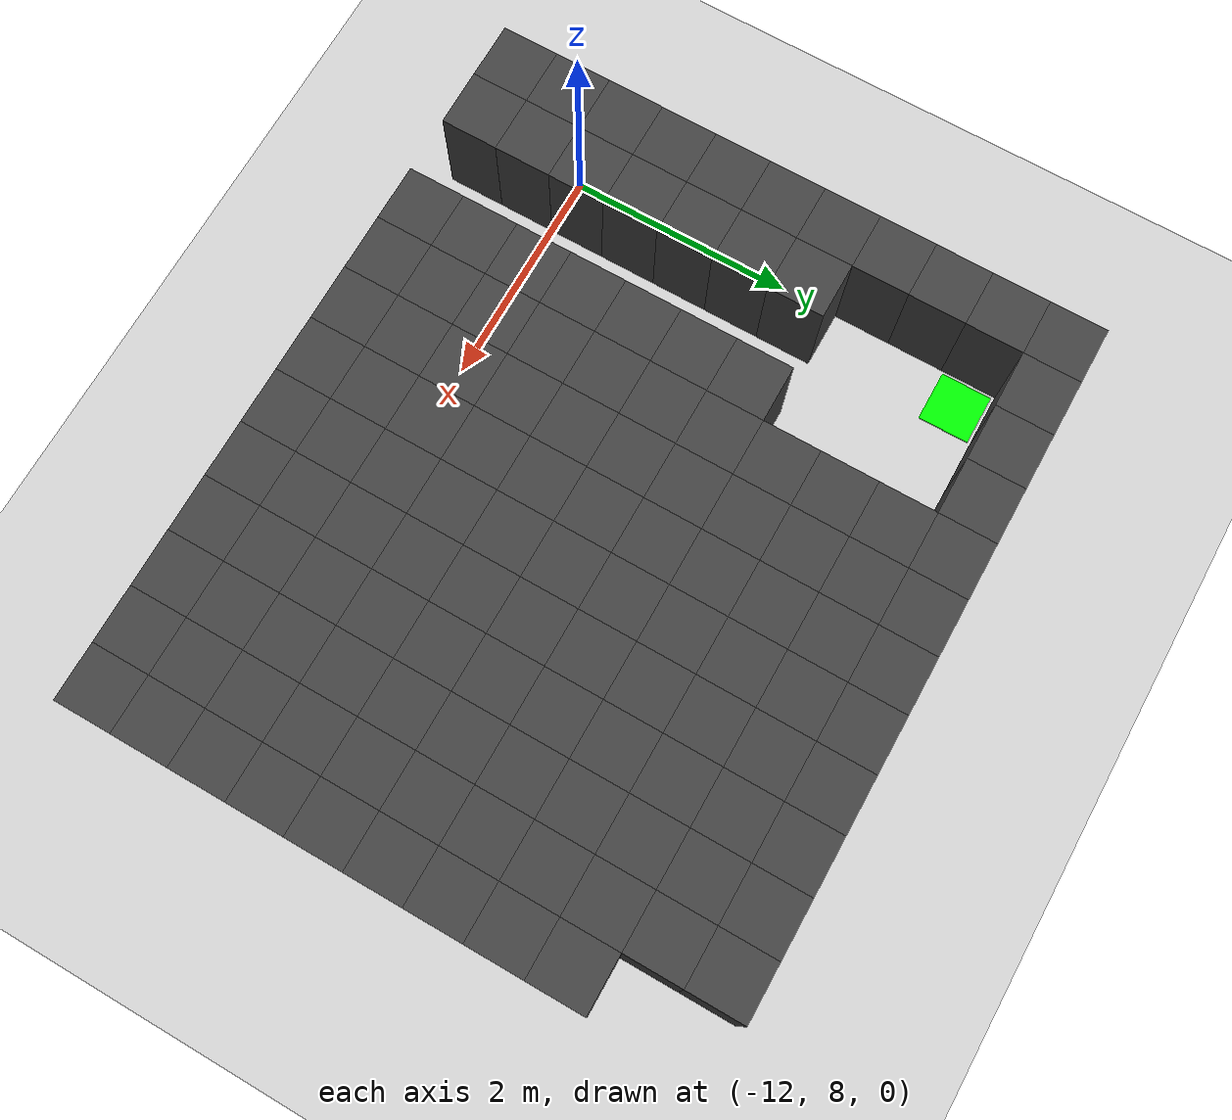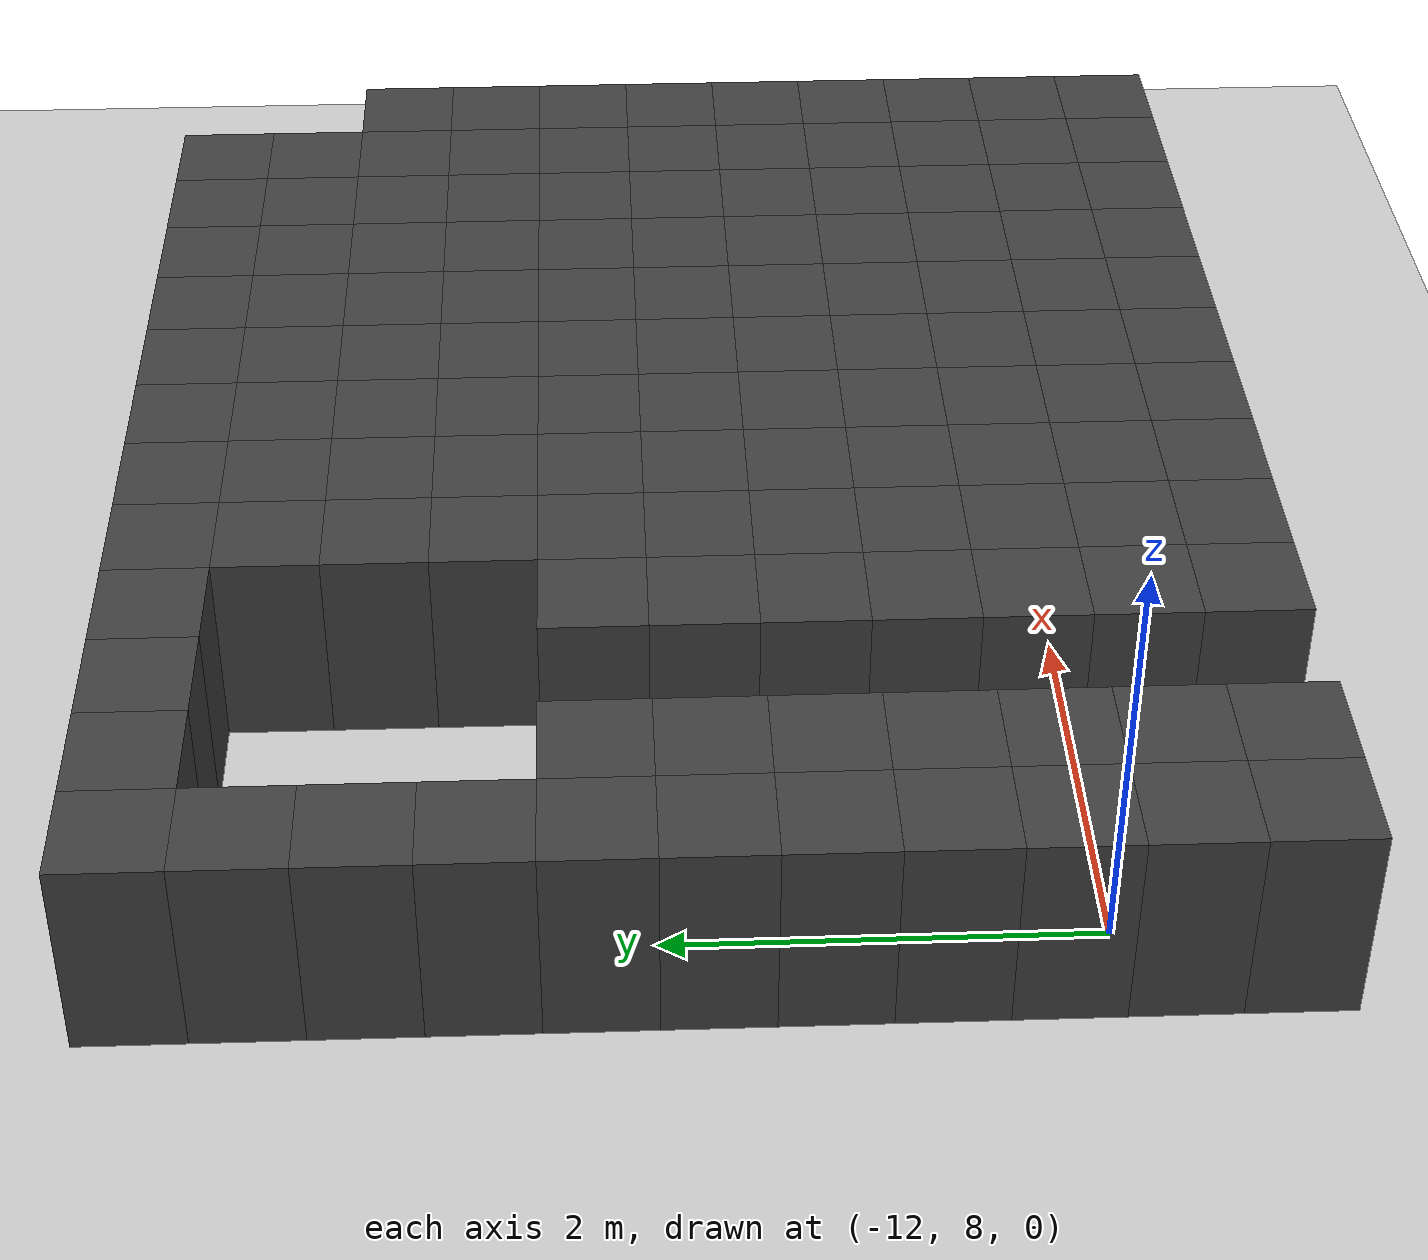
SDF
<sdf version="1.7">
 <world name="map_10764">
  <model name="ground_plane">
   <static>true</static>
   <link name="link">
    <collision name="collision">
     <geometry><plane><normal>0 0 1</normal><size>200 200</size></plane></geometry>
    </collision>
    <visual name="visual">
     <geometry><plane><normal>0 0 1</normal><size>200 200</size></plane></geometry>
     <material><ambient>0.8 0.8 0.8 1</ambient><diffuse>0.8 0.8 0.8 1</diffuse></material>
    </visual>
   </link>
  </model>
  <model name="maze_environment">
   <static>true</static>
   <link name="wall_0">
    <pose>-12.250 12.250 0.500 0 0 0</pose>
    <collision name="col"><geometry><box><size>0.5 0.5 1.0</size></box></geometry></collision>
    <visual name="vis">
     <geometry><box><size>0.5 0.5 1.0</size></box></geometry>
     <material><ambient>0.15 0.15 0.15 1</ambient><diffuse>0.25 0.25 0.25 1</diffuse></material>
    </visual>
   </link>
   <link name="wall_1">
    <pose>-11.750 12.250 0.500 0 0 0</pose>
    <collision name="col"><geometry><box><size>0.5 0.5 1.0</size></box></geometry></collision>
    <visual name="vis">
     <geometry><box><size>0.5 0.5 1.0</size></box></geometry>
     <material><ambient>0.15 0.15 0.15 1</ambient><diffuse>0.25 0.25 0.25 1</diffuse></material>
    </visual>
   </link>
   <link name="wall_2">
    <pose>-11.250 12.250 0.500 0 0 0</pose>
    <collision name="col"><geometry><box><size>0.5 0.5 1.0</size></box></geometry></collision>
    <visual name="vis">
     <geometry><box><size>0.5 0.5 1.0</size></box></geometry>
     <material><ambient>0.15 0.15 0.15 1</ambient><diffuse>0.25 0.25 0.25 1</diffuse></material>
    </visual>
   </link>
   <link name="wall_3">
    <pose>-10.750 12.250 0.500 0 0 0</pose>
    <collision name="col"><geometry><box><size>0.5 0.5 1.0</size></box></geometry></collision>
    <visual name="vis">
     <geometry><box><size>0.5 0.5 1.0</size></box></geometry>
     <material><ambient>0.15 0.15 0.15 1</ambient><diffuse>0.25 0.25 0.25 1</diffuse></material>
    </visual>
   </link>
   <link name="wall_4">
    <pose>-10.250 12.250 0.500 0 0 0</pose>
    <collision name="col"><geometry><box><size>0.5 0.5 1.0</size></box></geometry></collision>
    <visual name="vis">
     <geometry><box><size>0.5 0.5 1.0</size></box></geometry>
     <material><ambient>0.15 0.15 0.15 1</ambient><diffuse>0.25 0.25 0.25 1</diffuse></material>
    </visual>
   </link>
   <link name="wall_5">
    <pose>-9.750 12.250 0.500 0 0 0</pose>
    <collision name="col"><geometry><box><size>0.5 0.5 1.0</size></box></geometry></collision>
    <visual name="vis">
     <geometry><box><size>0.5 0.5 1.0</size></box></geometry>
     <material><ambient>0.15 0.15 0.15 1</ambient><diffuse>0.25 0.25 0.25 1</diffuse></material>
    </visual>
   </link>
   <link name="wall_6">
    <pose>-9.250 12.250 0.500 0 0 0</pose>
    <collision name="col"><geometry><box><size>0.5 0.5 1.0</size></box></geometry></collision>
    <visual name="vis">
     <geometry><box><size>0.5 0.5 1.0</size></box></geometry>
     <material><ambient>0.15 0.15 0.15 1</ambient><diffuse>0.25 0.25 0.25 1</diffuse></material>
    </visual>
   </link>
   <link name="wall_7">
    <pose>-8.750 12.250 0.500 0 0 0</pose>
    <collision name="col"><geometry><box><size>0.5 0.5 1.0</size></box></geometry></collision>
    <visual name="vis">
     <geometry><box><size>0.5 0.5 1.0</size></box></geometry>
     <material><ambient>0.15 0.15 0.15 1</ambient><diffuse>0.25 0.25 0.25 1</diffuse></material>
    </visual>
   </link>
   <link name="wall_8">
    <pose>-8.250 12.250 0.500 0 0 0</pose>
    <collision name="col"><geometry><box><size>0.5 0.5 1.0</size></box></geometry></collision>
    <visual name="vis">
     <geometry><box><size>0.5 0.5 1.0</size></box></geometry>
     <material><ambient>0.15 0.15 0.15 1</ambient><diffuse>0.25 0.25 0.25 1</diffuse></material>
    </visual>
   </link>
   <link name="wall_9">
    <pose>-7.750 12.250 0.500 0 0 0</pose>
    <collision name="col"><geometry><box><size>0.5 0.5 1.0</size></box></geometry></collision>
    <visual name="vis">
     <geometry><box><size>0.5 0.5 1.0</size></box></geometry>
     <material><ambient>0.15 0.15 0.15 1</ambient><diffuse>0.25 0.25 0.25 1</diffuse></material>
    </visual>
   </link>
   <link name="wall_10">
    <pose>-7.250 12.250 0.500 0 0 0</pose>
    <collision name="col"><geometry><box><size>0.5 0.5 1.0</size></box></geometry></collision>
    <visual name="vis">
     <geometry><box><size>0.5 0.5 1.0</size></box></geometry>
     <material><ambient>0.15 0.15 0.15 1</ambient><diffuse>0.25 0.25 0.25 1</diffuse></material>
    </visual>
   </link>
   <link name="wall_11">
    <pose>-6.750 12.250 0.500 0 0 0</pose>
    <collision name="col"><geometry><box><size>0.5 0.5 1.0</size></box></geometry></collision>
    <visual name="vis">
     <geometry><box><size>0.5 0.5 1.0</size></box></geometry>
     <material><ambient>0.15 0.15 0.15 1</ambient><diffuse>0.25 0.25 0.25 1</diffuse></material>
    </visual>
   </link>
   <link name="wall_50">
    <pose>-12.250 11.750 0.500 0 0 0</pose>
    <collision name="col"><geometry><box><size>0.5 0.5 1.0</size></box></geometry></collision>
    <visual name="vis">
     <geometry><box><size>0.5 0.5 1.0</size></box></geometry>
     <material><ambient>0.15 0.15 0.15 1</ambient><diffuse>0.25 0.25 0.25 1</diffuse></material>
    </visual>
   </link>
   <link name="wall_51">
    <pose>-10.250 11.750 0.500 0 0 0</pose>
    <collision name="col"><geometry><box><size>0.5 0.5 1.0</size></box></geometry></collision>
    <visual name="vis">
     <geometry><box><size>0.5 0.5 1.0</size></box></geometry>
     <material><ambient>0.15 0.15 0.15 1</ambient><diffuse>0.25 0.25 0.25 1</diffuse></material>
    </visual>
   </link>
   <link name="wall_52">
    <pose>-9.750 11.750 0.500 0 0 0</pose>
    <collision name="col"><geometry><box><size>0.5 0.5 1.0</size></box></geometry></collision>
    <visual name="vis">
     <geometry><box><size>0.5 0.5 1.0</size></box></geometry>
     <material><ambient>0.15 0.15 0.15 1</ambient><diffuse>0.25 0.25 0.25 1</diffuse></material>
    </visual>
   </link>
   <link name="wall_53">
    <pose>-9.250 11.750 0.500 0 0 0</pose>
    <collision name="col"><geometry><box><size>0.5 0.5 1.0</size></box></geometry></collision>
    <visual name="vis">
     <geometry><box><size>0.5 0.5 1.0</size></box></geometry>
     <material><ambient>0.15 0.15 0.15 1</ambient><diffuse>0.25 0.25 0.25 1</diffuse></material>
    </visual>
   </link>
   <link name="wall_54">
    <pose>-8.750 11.750 0.500 0 0 0</pose>
    <collision name="col"><geometry><box><size>0.5 0.5 1.0</size></box></geometry></collision>
    <visual name="vis">
     <geometry><box><size>0.5 0.5 1.0</size></box></geometry>
     <material><ambient>0.15 0.15 0.15 1</ambient><diffuse>0.25 0.25 0.25 1</diffuse></material>
    </visual>
   </link>
   <link name="wall_55">
    <pose>-8.250 11.750 0.500 0 0 0</pose>
    <collision name="col"><geometry><box><size>0.5 0.5 1.0</size></box></geometry></collision>
    <visual name="vis">
     <geometry><box><size>0.5 0.5 1.0</size></box></geometry>
     <material><ambient>0.15 0.15 0.15 1</ambient><diffuse>0.25 0.25 0.25 1</diffuse></material>
    </visual>
   </link>
   <link name="wall_56">
    <pose>-7.750 11.750 0.500 0 0 0</pose>
    <collision name="col"><geometry><box><size>0.5 0.5 1.0</size></box></geometry></collision>
    <visual name="vis">
     <geometry><box><size>0.5 0.5 1.0</size></box></geometry>
     <material><ambient>0.15 0.15 0.15 1</ambient><diffuse>0.25 0.25 0.25 1</diffuse></material>
    </visual>
   </link>
   <link name="wall_57">
    <pose>-7.250 11.750 0.500 0 0 0</pose>
    <collision name="col"><geometry><box><size>0.5 0.5 1.0</size></box></geometry></collision>
    <visual name="vis">
     <geometry><box><size>0.5 0.5 1.0</size></box></geometry>
     <material><ambient>0.15 0.15 0.15 1</ambient><diffuse>0.25 0.25 0.25 1</diffuse></material>
    </visual>
   </link>
   <link name="wall_58">
    <pose>-6.750 11.750 0.500 0 0 0</pose>
    <collision name="col"><geometry><box><size>0.5 0.5 1.0</size></box></geometry></collision>
    <visual name="vis">
     <geometry><box><size>0.5 0.5 1.0</size></box></geometry>
     <material><ambient>0.15 0.15 0.15 1</ambient><diffuse>0.25 0.25 0.25 1</diffuse></material>
    </visual>
   </link>
   <link name="wall_90">
    <pose>-12.250 11.250 0.500 0 0 0</pose>
    <collision name="col"><geometry><box><size>0.5 0.5 1.0</size></box></geometry></collision>
    <visual name="vis">
     <geometry><box><size>0.5 0.5 1.0</size></box></geometry>
     <material><ambient>0.15 0.15 0.15 1</ambient><diffuse>0.25 0.25 0.25 1</diffuse></material>
    </visual>
   </link>
   <link name="wall_91">
    <pose>-10.250 11.250 0.500 0 0 0</pose>
    <collision name="col"><geometry><box><size>0.5 0.5 1.0</size></box></geometry></collision>
    <visual name="vis">
     <geometry><box><size>0.5 0.5 1.0</size></box></geometry>
     <material><ambient>0.15 0.15 0.15 1</ambient><diffuse>0.25 0.25 0.25 1</diffuse></material>
    </visual>
   </link>
   <link name="wall_92">
    <pose>-9.750 11.250 0.500 0 0 0</pose>
    <collision name="col"><geometry><box><size>0.5 0.5 1.0</size></box></geometry></collision>
    <visual name="vis">
     <geometry><box><size>0.5 0.5 1.0</size></box></geometry>
     <material><ambient>0.15 0.15 0.15 1</ambient><diffuse>0.25 0.25 0.25 1</diffuse></material>
    </visual>
   </link>
   <link name="wall_93">
    <pose>-9.250 11.250 0.500 0 0 0</pose>
    <collision name="col"><geometry><box><size>0.5 0.5 1.0</size></box></geometry></collision>
    <visual name="vis">
     <geometry><box><size>0.5 0.5 1.0</size></box></geometry>
     <material><ambient>0.15 0.15 0.15 1</ambient><diffuse>0.25 0.25 0.25 1</diffuse></material>
    </visual>
   </link>
   <link name="wall_94">
    <pose>-8.750 11.250 0.500 0 0 0</pose>
    <collision name="col"><geometry><box><size>0.5 0.5 1.0</size></box></geometry></collision>
    <visual name="vis">
     <geometry><box><size>0.5 0.5 1.0</size></box></geometry>
     <material><ambient>0.15 0.15 0.15 1</ambient><diffuse>0.25 0.25 0.25 1</diffuse></material>
    </visual>
   </link>
   <link name="wall_95">
    <pose>-8.250 11.250 0.500 0 0 0</pose>
    <collision name="col"><geometry><box><size>0.5 0.5 1.0</size></box></geometry></collision>
    <visual name="vis">
     <geometry><box><size>0.5 0.5 1.0</size></box></geometry>
     <material><ambient>0.15 0.15 0.15 1</ambient><diffuse>0.25 0.25 0.25 1</diffuse></material>
    </visual>
   </link>
   <link name="wall_96">
    <pose>-7.750 11.250 0.500 0 0 0</pose>
    <collision name="col"><geometry><box><size>0.5 0.5 1.0</size></box></geometry></collision>
    <visual name="vis">
     <geometry><box><size>0.5 0.5 1.0</size></box></geometry>
     <material><ambient>0.15 0.15 0.15 1</ambient><diffuse>0.25 0.25 0.25 1</diffuse></material>
    </visual>
   </link>
   <link name="wall_97">
    <pose>-7.250 11.250 0.500 0 0 0</pose>
    <collision name="col"><geometry><box><size>0.5 0.5 1.0</size></box></geometry></collision>
    <visual name="vis">
     <geometry><box><size>0.5 0.5 1.0</size></box></geometry>
     <material><ambient>0.15 0.15 0.15 1</ambient><diffuse>0.25 0.25 0.25 1</diffuse></material>
    </visual>
   </link>
   <link name="wall_98">
    <pose>-6.750 11.250 0.500 0 0 0</pose>
    <collision name="col"><geometry><box><size>0.5 0.5 1.0</size></box></geometry></collision>
    <visual name="vis">
     <geometry><box><size>0.5 0.5 1.0</size></box></geometry>
     <material><ambient>0.15 0.15 0.15 1</ambient><diffuse>0.25 0.25 0.25 1</diffuse></material>
    </visual>
   </link>
   <link name="wall_99">
    <pose>-6.250 11.250 0.500 0 0 0</pose>
    <collision name="col"><geometry><box><size>0.5 0.5 1.0</size></box></geometry></collision>
    <visual name="vis">
     <geometry><box><size>0.5 0.5 1.0</size></box></geometry>
     <material><ambient>0.15 0.15 0.15 1</ambient><diffuse>0.25 0.25 0.25 1</diffuse></material>
    </visual>
   </link>
   <link name="wall_130">
    <pose>-12.250 10.750 0.500 0 0 0</pose>
    <collision name="col"><geometry><box><size>0.5 0.5 1.0</size></box></geometry></collision>
    <visual name="vis">
     <geometry><box><size>0.5 0.5 1.0</size></box></geometry>
     <material><ambient>0.15 0.15 0.15 1</ambient><diffuse>0.25 0.25 0.25 1</diffuse></material>
    </visual>
   </link>
   <link name="wall_131">
    <pose>-10.250 10.750 0.500 0 0 0</pose>
    <collision name="col"><geometry><box><size>0.5 0.5 1.0</size></box></geometry></collision>
    <visual name="vis">
     <geometry><box><size>0.5 0.5 1.0</size></box></geometry>
     <material><ambient>0.15 0.15 0.15 1</ambient><diffuse>0.25 0.25 0.25 1</diffuse></material>
    </visual>
   </link>
   <link name="wall_132">
    <pose>-9.750 10.750 0.500 0 0 0</pose>
    <collision name="col"><geometry><box><size>0.5 0.5 1.0</size></box></geometry></collision>
    <visual name="vis">
     <geometry><box><size>0.5 0.5 1.0</size></box></geometry>
     <material><ambient>0.15 0.15 0.15 1</ambient><diffuse>0.25 0.25 0.25 1</diffuse></material>
    </visual>
   </link>
   <link name="wall_133">
    <pose>-9.250 10.750 0.500 0 0 0</pose>
    <collision name="col"><geometry><box><size>0.5 0.5 1.0</size></box></geometry></collision>
    <visual name="vis">
     <geometry><box><size>0.5 0.5 1.0</size></box></geometry>
     <material><ambient>0.15 0.15 0.15 1</ambient><diffuse>0.25 0.25 0.25 1</diffuse></material>
    </visual>
   </link>
   <link name="wall_134">
    <pose>-8.750 10.750 0.500 0 0 0</pose>
    <collision name="col"><geometry><box><size>0.5 0.5 1.0</size></box></geometry></collision>
    <visual name="vis">
     <geometry><box><size>0.5 0.5 1.0</size></box></geometry>
     <material><ambient>0.15 0.15 0.15 1</ambient><diffuse>0.25 0.25 0.25 1</diffuse></material>
    </visual>
   </link>
   <link name="wall_135">
    <pose>-8.250 10.750 0.500 0 0 0</pose>
    <collision name="col"><geometry><box><size>0.5 0.5 1.0</size></box></geometry></collision>
    <visual name="vis">
     <geometry><box><size>0.5 0.5 1.0</size></box></geometry>
     <material><ambient>0.15 0.15 0.15 1</ambient><diffuse>0.25 0.25 0.25 1</diffuse></material>
    </visual>
   </link>
   <link name="wall_136">
    <pose>-7.750 10.750 0.500 0 0 0</pose>
    <collision name="col"><geometry><box><size>0.5 0.5 1.0</size></box></geometry></collision>
    <visual name="vis">
     <geometry><box><size>0.5 0.5 1.0</size></box></geometry>
     <material><ambient>0.15 0.15 0.15 1</ambient><diffuse>0.25 0.25 0.25 1</diffuse></material>
    </visual>
   </link>
   <link name="wall_137">
    <pose>-7.250 10.750 0.500 0 0 0</pose>
    <collision name="col"><geometry><box><size>0.5 0.5 1.0</size></box></geometry></collision>
    <visual name="vis">
     <geometry><box><size>0.5 0.5 1.0</size></box></geometry>
     <material><ambient>0.15 0.15 0.15 1</ambient><diffuse>0.25 0.25 0.25 1</diffuse></material>
    </visual>
   </link>
   <link name="wall_138">
    <pose>-6.750 10.750 0.500 0 0 0</pose>
    <collision name="col"><geometry><box><size>0.5 0.5 1.0</size></box></geometry></collision>
    <visual name="vis">
     <geometry><box><size>0.5 0.5 1.0</size></box></geometry>
     <material><ambient>0.15 0.15 0.15 1</ambient><diffuse>0.25 0.25 0.25 1</diffuse></material>
    </visual>
   </link>
   <link name="wall_139">
    <pose>-6.250 10.750 0.500 0 0 0</pose>
    <collision name="col"><geometry><box><size>0.5 0.5 1.0</size></box></geometry></collision>
    <visual name="vis">
     <geometry><box><size>0.5 0.5 1.0</size></box></geometry>
     <material><ambient>0.15 0.15 0.15 1</ambient><diffuse>0.25 0.25 0.25 1</diffuse></material>
    </visual>
   </link>
   <link name="wall_166">
    <pose>-12.250 10.250 0.500 0 0 0</pose>
    <collision name="col"><geometry><box><size>0.5 0.5 1.0</size></box></geometry></collision>
    <visual name="vis">
     <geometry><box><size>0.5 0.5 1.0</size></box></geometry>
     <material><ambient>0.15 0.15 0.15 1</ambient><diffuse>0.25 0.25 0.25 1</diffuse></material>
    </visual>
   </link>
   <link name="wall_167">
    <pose>-11.750 10.250 0.500 0 0 0</pose>
    <collision name="col"><geometry><box><size>0.5 0.5 1.0</size></box></geometry></collision>
    <visual name="vis">
     <geometry><box><size>0.5 0.5 1.0</size></box></geometry>
     <material><ambient>0.15 0.15 0.15 1</ambient><diffuse>0.25 0.25 0.25 1</diffuse></material>
    </visual>
   </link>
   <link name="wall_168">
    <pose>-10.750 10.250 0.500 0 0 0</pose>
    <collision name="col"><geometry><box><size>0.5 0.5 1.0</size></box></geometry></collision>
    <visual name="vis">
     <geometry><box><size>0.5 0.5 1.0</size></box></geometry>
     <material><ambient>0.15 0.15 0.15 1</ambient><diffuse>0.25 0.25 0.25 1</diffuse></material>
    </visual>
   </link>
   <link name="wall_169">
    <pose>-10.250 10.250 0.500 0 0 0</pose>
    <collision name="col"><geometry><box><size>0.5 0.5 1.0</size></box></geometry></collision>
    <visual name="vis">
     <geometry><box><size>0.5 0.5 1.0</size></box></geometry>
     <material><ambient>0.15 0.15 0.15 1</ambient><diffuse>0.25 0.25 0.25 1</diffuse></material>
    </visual>
   </link>
   <link name="wall_170">
    <pose>-9.750 10.250 0.500 0 0 0</pose>
    <collision name="col"><geometry><box><size>0.5 0.5 1.0</size></box></geometry></collision>
    <visual name="vis">
     <geometry><box><size>0.5 0.5 1.0</size></box></geometry>
     <material><ambient>0.15 0.15 0.15 1</ambient><diffuse>0.25 0.25 0.25 1</diffuse></material>
    </visual>
   </link>
   <link name="wall_171">
    <pose>-9.250 10.250 0.500 0 0 0</pose>
    <collision name="col"><geometry><box><size>0.5 0.5 1.0</size></box></geometry></collision>
    <visual name="vis">
     <geometry><box><size>0.5 0.5 1.0</size></box></geometry>
     <material><ambient>0.15 0.15 0.15 1</ambient><diffuse>0.25 0.25 0.25 1</diffuse></material>
    </visual>
   </link>
   <link name="wall_172">
    <pose>-8.750 10.250 0.500 0 0 0</pose>
    <collision name="col"><geometry><box><size>0.5 0.5 1.0</size></box></geometry></collision>
    <visual name="vis">
     <geometry><box><size>0.5 0.5 1.0</size></box></geometry>
     <material><ambient>0.15 0.15 0.15 1</ambient><diffuse>0.25 0.25 0.25 1</diffuse></material>
    </visual>
   </link>
   <link name="wall_173">
    <pose>-8.250 10.250 0.500 0 0 0</pose>
    <collision name="col"><geometry><box><size>0.5 0.5 1.0</size></box></geometry></collision>
    <visual name="vis">
     <geometry><box><size>0.5 0.5 1.0</size></box></geometry>
     <material><ambient>0.15 0.15 0.15 1</ambient><diffuse>0.25 0.25 0.25 1</diffuse></material>
    </visual>
   </link>
   <link name="wall_174">
    <pose>-7.750 10.250 0.500 0 0 0</pose>
    <collision name="col"><geometry><box><size>0.5 0.5 1.0</size></box></geometry></collision>
    <visual name="vis">
     <geometry><box><size>0.5 0.5 1.0</size></box></geometry>
     <material><ambient>0.15 0.15 0.15 1</ambient><diffuse>0.25 0.25 0.25 1</diffuse></material>
    </visual>
   </link>
   <link name="wall_175">
    <pose>-7.250 10.250 0.500 0 0 0</pose>
    <collision name="col"><geometry><box><size>0.5 0.5 1.0</size></box></geometry></collision>
    <visual name="vis">
     <geometry><box><size>0.5 0.5 1.0</size></box></geometry>
     <material><ambient>0.15 0.15 0.15 1</ambient><diffuse>0.25 0.25 0.25 1</diffuse></material>
    </visual>
   </link>
   <link name="wall_176">
    <pose>-6.750 10.250 0.500 0 0 0</pose>
    <collision name="col"><geometry><box><size>0.5 0.5 1.0</size></box></geometry></collision>
    <visual name="vis">
     <geometry><box><size>0.5 0.5 1.0</size></box></geometry>
     <material><ambient>0.15 0.15 0.15 1</ambient><diffuse>0.25 0.25 0.25 1</diffuse></material>
    </visual>
   </link>
   <link name="wall_177">
    <pose>-6.250 10.250 0.500 0 0 0</pose>
    <collision name="col"><geometry><box><size>0.5 0.5 1.0</size></box></geometry></collision>
    <visual name="vis">
     <geometry><box><size>0.5 0.5 1.0</size></box></geometry>
     <material><ambient>0.15 0.15 0.15 1</ambient><diffuse>0.25 0.25 0.25 1</diffuse></material>
    </visual>
   </link>
   <link name="wall_207">
    <pose>-12.250 9.750 0.500 0 0 0</pose>
    <collision name="col"><geometry><box><size>0.5 0.5 1.0</size></box></geometry></collision>
    <visual name="vis">
     <geometry><box><size>0.5 0.5 1.0</size></box></geometry>
     <material><ambient>0.15 0.15 0.15 1</ambient><diffuse>0.25 0.25 0.25 1</diffuse></material>
    </visual>
   </link>
   <link name="wall_208">
    <pose>-11.750 9.750 0.500 0 0 0</pose>
    <collision name="col"><geometry><box><size>0.5 0.5 1.0</size></box></geometry></collision>
    <visual name="vis">
     <geometry><box><size>0.5 0.5 1.0</size></box></geometry>
     <material><ambient>0.15 0.15 0.15 1</ambient><diffuse>0.25 0.25 0.25 1</diffuse></material>
    </visual>
   </link>
   <link name="wall_209">
    <pose>-10.750 9.750 0.500 0 0 0</pose>
    <collision name="col"><geometry><box><size>0.5 0.5 1.0</size></box></geometry></collision>
    <visual name="vis">
     <geometry><box><size>0.5 0.5 1.0</size></box></geometry>
     <material><ambient>0.15 0.15 0.15 1</ambient><diffuse>0.25 0.25 0.25 1</diffuse></material>
    </visual>
   </link>
   <link name="wall_210">
    <pose>-10.250 9.750 0.500 0 0 0</pose>
    <collision name="col"><geometry><box><size>0.5 0.5 1.0</size></box></geometry></collision>
    <visual name="vis">
     <geometry><box><size>0.5 0.5 1.0</size></box></geometry>
     <material><ambient>0.15 0.15 0.15 1</ambient><diffuse>0.25 0.25 0.25 1</diffuse></material>
    </visual>
   </link>
   <link name="wall_211">
    <pose>-9.750 9.750 0.500 0 0 0</pose>
    <collision name="col"><geometry><box><size>0.5 0.5 1.0</size></box></geometry></collision>
    <visual name="vis">
     <geometry><box><size>0.5 0.5 1.0</size></box></geometry>
     <material><ambient>0.15 0.15 0.15 1</ambient><diffuse>0.25 0.25 0.25 1</diffuse></material>
    </visual>
   </link>
   <link name="wall_212">
    <pose>-9.250 9.750 0.500 0 0 0</pose>
    <collision name="col"><geometry><box><size>0.5 0.5 1.0</size></box></geometry></collision>
    <visual name="vis">
     <geometry><box><size>0.5 0.5 1.0</size></box></geometry>
     <material><ambient>0.15 0.15 0.15 1</ambient><diffuse>0.25 0.25 0.25 1</diffuse></material>
    </visual>
   </link>
   <link name="wall_213">
    <pose>-8.750 9.750 0.500 0 0 0</pose>
    <collision name="col"><geometry><box><size>0.5 0.5 1.0</size></box></geometry></collision>
    <visual name="vis">
     <geometry><box><size>0.5 0.5 1.0</size></box></geometry>
     <material><ambient>0.15 0.15 0.15 1</ambient><diffuse>0.25 0.25 0.25 1</diffuse></material>
    </visual>
   </link>
   <link name="wall_214">
    <pose>-8.250 9.750 0.500 0 0 0</pose>
    <collision name="col"><geometry><box><size>0.5 0.5 1.0</size></box></geometry></collision>
    <visual name="vis">
     <geometry><box><size>0.5 0.5 1.0</size></box></geometry>
     <material><ambient>0.15 0.15 0.15 1</ambient><diffuse>0.25 0.25 0.25 1</diffuse></material>
    </visual>
   </link>
   <link name="wall_215">
    <pose>-7.750 9.750 0.500 0 0 0</pose>
    <collision name="col"><geometry><box><size>0.5 0.5 1.0</size></box></geometry></collision>
    <visual name="vis">
     <geometry><box><size>0.5 0.5 1.0</size></box></geometry>
     <material><ambient>0.15 0.15 0.15 1</ambient><diffuse>0.25 0.25 0.25 1</diffuse></material>
    </visual>
   </link>
   <link name="wall_216">
    <pose>-7.250 9.750 0.500 0 0 0</pose>
    <collision name="col"><geometry><box><size>0.5 0.5 1.0</size></box></geometry></collision>
    <visual name="vis">
     <geometry><box><size>0.5 0.5 1.0</size></box></geometry>
     <material><ambient>0.15 0.15 0.15 1</ambient><diffuse>0.25 0.25 0.25 1</diffuse></material>
    </visual>
   </link>
   <link name="wall_217">
    <pose>-6.750 9.750 0.500 0 0 0</pose>
    <collision name="col"><geometry><box><size>0.5 0.5 1.0</size></box></geometry></collision>
    <visual name="vis">
     <geometry><box><size>0.5 0.5 1.0</size></box></geometry>
     <material><ambient>0.15 0.15 0.15 1</ambient><diffuse>0.25 0.25 0.25 1</diffuse></material>
    </visual>
   </link>
   <link name="wall_218">
    <pose>-6.250 9.750 0.500 0 0 0</pose>
    <collision name="col"><geometry><box><size>0.5 0.5 1.0</size></box></geometry></collision>
    <visual name="vis">
     <geometry><box><size>0.5 0.5 1.0</size></box></geometry>
     <material><ambient>0.15 0.15 0.15 1</ambient><diffuse>0.25 0.25 0.25 1</diffuse></material>
    </visual>
   </link>
   <link name="wall_255">
    <pose>-12.250 9.250 0.500 0 0 0</pose>
    <collision name="col"><geometry><box><size>0.5 0.5 1.0</size></box></geometry></collision>
    <visual name="vis">
     <geometry><box><size>0.5 0.5 1.0</size></box></geometry>
     <material><ambient>0.15 0.15 0.15 1</ambient><diffuse>0.25 0.25 0.25 1</diffuse></material>
    </visual>
   </link>
   <link name="wall_256">
    <pose>-11.750 9.250 0.500 0 0 0</pose>
    <collision name="col"><geometry><box><size>0.5 0.5 1.0</size></box></geometry></collision>
    <visual name="vis">
     <geometry><box><size>0.5 0.5 1.0</size></box></geometry>
     <material><ambient>0.15 0.15 0.15 1</ambient><diffuse>0.25 0.25 0.25 1</diffuse></material>
    </visual>
   </link>
   <link name="wall_257">
    <pose>-10.750 9.250 0.500 0 0 0</pose>
    <collision name="col"><geometry><box><size>0.5 0.5 1.0</size></box></geometry></collision>
    <visual name="vis">
     <geometry><box><size>0.5 0.5 1.0</size></box></geometry>
     <material><ambient>0.15 0.15 0.15 1</ambient><diffuse>0.25 0.25 0.25 1</diffuse></material>
    </visual>
   </link>
   <link name="wall_258">
    <pose>-10.250 9.250 0.500 0 0 0</pose>
    <collision name="col"><geometry><box><size>0.5 0.5 1.0</size></box></geometry></collision>
    <visual name="vis">
     <geometry><box><size>0.5 0.5 1.0</size></box></geometry>
     <material><ambient>0.15 0.15 0.15 1</ambient><diffuse>0.25 0.25 0.25 1</diffuse></material>
    </visual>
   </link>
   <link name="wall_259">
    <pose>-9.750 9.250 0.500 0 0 0</pose>
    <collision name="col"><geometry><box><size>0.5 0.5 1.0</size></box></geometry></collision>
    <visual name="vis">
     <geometry><box><size>0.5 0.5 1.0</size></box></geometry>
     <material><ambient>0.15 0.15 0.15 1</ambient><diffuse>0.25 0.25 0.25 1</diffuse></material>
    </visual>
   </link>
   <link name="wall_260">
    <pose>-9.250 9.250 0.500 0 0 0</pose>
    <collision name="col"><geometry><box><size>0.5 0.5 1.0</size></box></geometry></collision>
    <visual name="vis">
     <geometry><box><size>0.5 0.5 1.0</size></box></geometry>
     <material><ambient>0.15 0.15 0.15 1</ambient><diffuse>0.25 0.25 0.25 1</diffuse></material>
    </visual>
   </link>
   <link name="wall_261">
    <pose>-8.750 9.250 0.500 0 0 0</pose>
    <collision name="col"><geometry><box><size>0.5 0.5 1.0</size></box></geometry></collision>
    <visual name="vis">
     <geometry><box><size>0.5 0.5 1.0</size></box></geometry>
     <material><ambient>0.15 0.15 0.15 1</ambient><diffuse>0.25 0.25 0.25 1</diffuse></material>
    </visual>
   </link>
   <link name="wall_262">
    <pose>-8.250 9.250 0.500 0 0 0</pose>
    <collision name="col"><geometry><box><size>0.5 0.5 1.0</size></box></geometry></collision>
    <visual name="vis">
     <geometry><box><size>0.5 0.5 1.0</size></box></geometry>
     <material><ambient>0.15 0.15 0.15 1</ambient><diffuse>0.25 0.25 0.25 1</diffuse></material>
    </visual>
   </link>
   <link name="wall_263">
    <pose>-7.750 9.250 0.500 0 0 0</pose>
    <collision name="col"><geometry><box><size>0.5 0.5 1.0</size></box></geometry></collision>
    <visual name="vis">
     <geometry><box><size>0.5 0.5 1.0</size></box></geometry>
     <material><ambient>0.15 0.15 0.15 1</ambient><diffuse>0.25 0.25 0.25 1</diffuse></material>
    </visual>
   </link>
   <link name="wall_264">
    <pose>-7.250 9.250 0.500 0 0 0</pose>
    <collision name="col"><geometry><box><size>0.5 0.5 1.0</size></box></geometry></collision>
    <visual name="vis">
     <geometry><box><size>0.5 0.5 1.0</size></box></geometry>
     <material><ambient>0.15 0.15 0.15 1</ambient><diffuse>0.25 0.25 0.25 1</diffuse></material>
    </visual>
   </link>
   <link name="wall_265">
    <pose>-6.750 9.250 0.500 0 0 0</pose>
    <collision name="col"><geometry><box><size>0.5 0.5 1.0</size></box></geometry></collision>
    <visual name="vis">
     <geometry><box><size>0.5 0.5 1.0</size></box></geometry>
     <material><ambient>0.15 0.15 0.15 1</ambient><diffuse>0.25 0.25 0.25 1</diffuse></material>
    </visual>
   </link>
   <link name="wall_266">
    <pose>-6.250 9.250 0.500 0 0 0</pose>
    <collision name="col"><geometry><box><size>0.5 0.5 1.0</size></box></geometry></collision>
    <visual name="vis">
     <geometry><box><size>0.5 0.5 1.0</size></box></geometry>
     <material><ambient>0.15 0.15 0.15 1</ambient><diffuse>0.25 0.25 0.25 1</diffuse></material>
    </visual>
   </link>
   <link name="wall_303">
    <pose>-12.250 8.750 0.500 0 0 0</pose>
    <collision name="col"><geometry><box><size>0.5 0.5 1.0</size></box></geometry></collision>
    <visual name="vis">
     <geometry><box><size>0.5 0.5 1.0</size></box></geometry>
     <material><ambient>0.15 0.15 0.15 1</ambient><diffuse>0.25 0.25 0.25 1</diffuse></material>
    </visual>
   </link>
   <link name="wall_304">
    <pose>-11.750 8.750 0.500 0 0 0</pose>
    <collision name="col"><geometry><box><size>0.5 0.5 1.0</size></box></geometry></collision>
    <visual name="vis">
     <geometry><box><size>0.5 0.5 1.0</size></box></geometry>
     <material><ambient>0.15 0.15 0.15 1</ambient><diffuse>0.25 0.25 0.25 1</diffuse></material>
    </visual>
   </link>
   <link name="wall_305">
    <pose>-10.750 8.750 0.500 0 0 0</pose>
    <collision name="col"><geometry><box><size>0.5 0.5 1.0</size></box></geometry></collision>
    <visual name="vis">
     <geometry><box><size>0.5 0.5 1.0</size></box></geometry>
     <material><ambient>0.15 0.15 0.15 1</ambient><diffuse>0.25 0.25 0.25 1</diffuse></material>
    </visual>
   </link>
   <link name="wall_306">
    <pose>-10.250 8.750 0.500 0 0 0</pose>
    <collision name="col"><geometry><box><size>0.5 0.5 1.0</size></box></geometry></collision>
    <visual name="vis">
     <geometry><box><size>0.5 0.5 1.0</size></box></geometry>
     <material><ambient>0.15 0.15 0.15 1</ambient><diffuse>0.25 0.25 0.25 1</diffuse></material>
    </visual>
   </link>
   <link name="wall_307">
    <pose>-9.750 8.750 0.500 0 0 0</pose>
    <collision name="col"><geometry><box><size>0.5 0.5 1.0</size></box></geometry></collision>
    <visual name="vis">
     <geometry><box><size>0.5 0.5 1.0</size></box></geometry>
     <material><ambient>0.15 0.15 0.15 1</ambient><diffuse>0.25 0.25 0.25 1</diffuse></material>
    </visual>
   </link>
   <link name="wall_308">
    <pose>-9.250 8.750 0.500 0 0 0</pose>
    <collision name="col"><geometry><box><size>0.5 0.5 1.0</size></box></geometry></collision>
    <visual name="vis">
     <geometry><box><size>0.5 0.5 1.0</size></box></geometry>
     <material><ambient>0.15 0.15 0.15 1</ambient><diffuse>0.25 0.25 0.25 1</diffuse></material>
    </visual>
   </link>
   <link name="wall_309">
    <pose>-8.750 8.750 0.500 0 0 0</pose>
    <collision name="col"><geometry><box><size>0.5 0.5 1.0</size></box></geometry></collision>
    <visual name="vis">
     <geometry><box><size>0.5 0.5 1.0</size></box></geometry>
     <material><ambient>0.15 0.15 0.15 1</ambient><diffuse>0.25 0.25 0.25 1</diffuse></material>
    </visual>
   </link>
   <link name="wall_310">
    <pose>-8.250 8.750 0.500 0 0 0</pose>
    <collision name="col"><geometry><box><size>0.5 0.5 1.0</size></box></geometry></collision>
    <visual name="vis">
     <geometry><box><size>0.5 0.5 1.0</size></box></geometry>
     <material><ambient>0.15 0.15 0.15 1</ambient><diffuse>0.25 0.25 0.25 1</diffuse></material>
    </visual>
   </link>
   <link name="wall_311">
    <pose>-7.750 8.750 0.500 0 0 0</pose>
    <collision name="col"><geometry><box><size>0.5 0.5 1.0</size></box></geometry></collision>
    <visual name="vis">
     <geometry><box><size>0.5 0.5 1.0</size></box></geometry>
     <material><ambient>0.15 0.15 0.15 1</ambient><diffuse>0.25 0.25 0.25 1</diffuse></material>
    </visual>
   </link>
   <link name="wall_312">
    <pose>-7.250 8.750 0.500 0 0 0</pose>
    <collision name="col"><geometry><box><size>0.5 0.5 1.0</size></box></geometry></collision>
    <visual name="vis">
     <geometry><box><size>0.5 0.5 1.0</size></box></geometry>
     <material><ambient>0.15 0.15 0.15 1</ambient><diffuse>0.25 0.25 0.25 1</diffuse></material>
    </visual>
   </link>
   <link name="wall_313">
    <pose>-6.750 8.750 0.500 0 0 0</pose>
    <collision name="col"><geometry><box><size>0.5 0.5 1.0</size></box></geometry></collision>
    <visual name="vis">
     <geometry><box><size>0.5 0.5 1.0</size></box></geometry>
     <material><ambient>0.15 0.15 0.15 1</ambient><diffuse>0.25 0.25 0.25 1</diffuse></material>
    </visual>
   </link>
   <link name="wall_314">
    <pose>-6.250 8.750 0.500 0 0 0</pose>
    <collision name="col"><geometry><box><size>0.5 0.5 1.0</size></box></geometry></collision>
    <visual name="vis">
     <geometry><box><size>0.5 0.5 1.0</size></box></geometry>
     <material><ambient>0.15 0.15 0.15 1</ambient><diffuse>0.25 0.25 0.25 1</diffuse></material>
    </visual>
   </link>
   <link name="wall_351">
    <pose>-12.250 8.250 0.500 0 0 0</pose>
    <collision name="col"><geometry><box><size>0.5 0.5 1.0</size></box></geometry></collision>
    <visual name="vis">
     <geometry><box><size>0.5 0.5 1.0</size></box></geometry>
     <material><ambient>0.15 0.15 0.15 1</ambient><diffuse>0.25 0.25 0.25 1</diffuse></material>
    </visual>
   </link>
   <link name="wall_352">
    <pose>-11.750 8.250 0.500 0 0 0</pose>
    <collision name="col"><geometry><box><size>0.5 0.5 1.0</size></box></geometry></collision>
    <visual name="vis">
     <geometry><box><size>0.5 0.5 1.0</size></box></geometry>
     <material><ambient>0.15 0.15 0.15 1</ambient><diffuse>0.25 0.25 0.25 1</diffuse></material>
    </visual>
   </link>
   <link name="wall_353">
    <pose>-10.750 8.250 0.500 0 0 0</pose>
    <collision name="col"><geometry><box><size>0.5 0.5 1.0</size></box></geometry></collision>
    <visual name="vis">
     <geometry><box><size>0.5 0.5 1.0</size></box></geometry>
     <material><ambient>0.15 0.15 0.15 1</ambient><diffuse>0.25 0.25 0.25 1</diffuse></material>
    </visual>
   </link>
   <link name="wall_354">
    <pose>-10.250 8.250 0.500 0 0 0</pose>
    <collision name="col"><geometry><box><size>0.5 0.5 1.0</size></box></geometry></collision>
    <visual name="vis">
     <geometry><box><size>0.5 0.5 1.0</size></box></geometry>
     <material><ambient>0.15 0.15 0.15 1</ambient><diffuse>0.25 0.25 0.25 1</diffuse></material>
    </visual>
   </link>
   <link name="wall_355">
    <pose>-9.750 8.250 0.500 0 0 0</pose>
    <collision name="col"><geometry><box><size>0.5 0.5 1.0</size></box></geometry></collision>
    <visual name="vis">
     <geometry><box><size>0.5 0.5 1.0</size></box></geometry>
     <material><ambient>0.15 0.15 0.15 1</ambient><diffuse>0.25 0.25 0.25 1</diffuse></material>
    </visual>
   </link>
   <link name="wall_356">
    <pose>-9.250 8.250 0.500 0 0 0</pose>
    <collision name="col"><geometry><box><size>0.5 0.5 1.0</size></box></geometry></collision>
    <visual name="vis">
     <geometry><box><size>0.5 0.5 1.0</size></box></geometry>
     <material><ambient>0.15 0.15 0.15 1</ambient><diffuse>0.25 0.25 0.25 1</diffuse></material>
    </visual>
   </link>
   <link name="wall_357">
    <pose>-8.750 8.250 0.500 0 0 0</pose>
    <collision name="col"><geometry><box><size>0.5 0.5 1.0</size></box></geometry></collision>
    <visual name="vis">
     <geometry><box><size>0.5 0.5 1.0</size></box></geometry>
     <material><ambient>0.15 0.15 0.15 1</ambient><diffuse>0.25 0.25 0.25 1</diffuse></material>
    </visual>
   </link>
   <link name="wall_358">
    <pose>-8.250 8.250 0.500 0 0 0</pose>
    <collision name="col"><geometry><box><size>0.5 0.5 1.0</size></box></geometry></collision>
    <visual name="vis">
     <geometry><box><size>0.5 0.5 1.0</size></box></geometry>
     <material><ambient>0.15 0.15 0.15 1</ambient><diffuse>0.25 0.25 0.25 1</diffuse></material>
    </visual>
   </link>
   <link name="wall_359">
    <pose>-7.750 8.250 0.500 0 0 0</pose>
    <collision name="col"><geometry><box><size>0.5 0.5 1.0</size></box></geometry></collision>
    <visual name="vis">
     <geometry><box><size>0.5 0.5 1.0</size></box></geometry>
     <material><ambient>0.15 0.15 0.15 1</ambient><diffuse>0.25 0.25 0.25 1</diffuse></material>
    </visual>
   </link>
   <link name="wall_360">
    <pose>-7.250 8.250 0.500 0 0 0</pose>
    <collision name="col"><geometry><box><size>0.5 0.5 1.0</size></box></geometry></collision>
    <visual name="vis">
     <geometry><box><size>0.5 0.5 1.0</size></box></geometry>
     <material><ambient>0.15 0.15 0.15 1</ambient><diffuse>0.25 0.25 0.25 1</diffuse></material>
    </visual>
   </link>
   <link name="wall_361">
    <pose>-6.750 8.250 0.500 0 0 0</pose>
    <collision name="col"><geometry><box><size>0.5 0.5 1.0</size></box></geometry></collision>
    <visual name="vis">
     <geometry><box><size>0.5 0.5 1.0</size></box></geometry>
     <material><ambient>0.15 0.15 0.15 1</ambient><diffuse>0.25 0.25 0.25 1</diffuse></material>
    </visual>
   </link>
   <link name="wall_362">
    <pose>-6.250 8.250 0.500 0 0 0</pose>
    <collision name="col"><geometry><box><size>0.5 0.5 1.0</size></box></geometry></collision>
    <visual name="vis">
     <geometry><box><size>0.5 0.5 1.0</size></box></geometry>
     <material><ambient>0.15 0.15 0.15 1</ambient><diffuse>0.25 0.25 0.25 1</diffuse></material>
    </visual>
   </link>
   <link name="wall_399">
    <pose>-12.250 7.750 0.500 0 0 0</pose>
    <collision name="col"><geometry><box><size>0.5 0.5 1.0</size></box></geometry></collision>
    <visual name="vis">
     <geometry><box><size>0.5 0.5 1.0</size></box></geometry>
     <material><ambient>0.15 0.15 0.15 1</ambient><diffuse>0.25 0.25 0.25 1</diffuse></material>
    </visual>
   </link>
   <link name="wall_400">
    <pose>-11.750 7.750 0.500 0 0 0</pose>
    <collision name="col"><geometry><box><size>0.5 0.5 1.0</size></box></geometry></collision>
    <visual name="vis">
     <geometry><box><size>0.5 0.5 1.0</size></box></geometry>
     <material><ambient>0.15 0.15 0.15 1</ambient><diffuse>0.25 0.25 0.25 1</diffuse></material>
    </visual>
   </link>
   <link name="wall_401">
    <pose>-10.750 7.750 0.500 0 0 0</pose>
    <collision name="col"><geometry><box><size>0.5 0.5 1.0</size></box></geometry></collision>
    <visual name="vis">
     <geometry><box><size>0.5 0.5 1.0</size></box></geometry>
     <material><ambient>0.15 0.15 0.15 1</ambient><diffuse>0.25 0.25 0.25 1</diffuse></material>
    </visual>
   </link>
   <link name="wall_402">
    <pose>-10.250 7.750 0.500 0 0 0</pose>
    <collision name="col"><geometry><box><size>0.5 0.5 1.0</size></box></geometry></collision>
    <visual name="vis">
     <geometry><box><size>0.5 0.5 1.0</size></box></geometry>
     <material><ambient>0.15 0.15 0.15 1</ambient><diffuse>0.25 0.25 0.25 1</diffuse></material>
    </visual>
   </link>
   <link name="wall_403">
    <pose>-9.750 7.750 0.500 0 0 0</pose>
    <collision name="col"><geometry><box><size>0.5 0.5 1.0</size></box></geometry></collision>
    <visual name="vis">
     <geometry><box><size>0.5 0.5 1.0</size></box></geometry>
     <material><ambient>0.15 0.15 0.15 1</ambient><diffuse>0.25 0.25 0.25 1</diffuse></material>
    </visual>
   </link>
   <link name="wall_404">
    <pose>-9.250 7.750 0.500 0 0 0</pose>
    <collision name="col"><geometry><box><size>0.5 0.5 1.0</size></box></geometry></collision>
    <visual name="vis">
     <geometry><box><size>0.5 0.5 1.0</size></box></geometry>
     <material><ambient>0.15 0.15 0.15 1</ambient><diffuse>0.25 0.25 0.25 1</diffuse></material>
    </visual>
   </link>
   <link name="wall_405">
    <pose>-8.750 7.750 0.500 0 0 0</pose>
    <collision name="col"><geometry><box><size>0.5 0.5 1.0</size></box></geometry></collision>
    <visual name="vis">
     <geometry><box><size>0.5 0.5 1.0</size></box></geometry>
     <material><ambient>0.15 0.15 0.15 1</ambient><diffuse>0.25 0.25 0.25 1</diffuse></material>
    </visual>
   </link>
   <link name="wall_406">
    <pose>-8.250 7.750 0.500 0 0 0</pose>
    <collision name="col"><geometry><box><size>0.5 0.5 1.0</size></box></geometry></collision>
    <visual name="vis">
     <geometry><box><size>0.5 0.5 1.0</size></box></geometry>
     <material><ambient>0.15 0.15 0.15 1</ambient><diffuse>0.25 0.25 0.25 1</diffuse></material>
    </visual>
   </link>
   <link name="wall_407">
    <pose>-7.750 7.750 0.500 0 0 0</pose>
    <collision name="col"><geometry><box><size>0.5 0.5 1.0</size></box></geometry></collision>
    <visual name="vis">
     <geometry><box><size>0.5 0.5 1.0</size></box></geometry>
     <material><ambient>0.15 0.15 0.15 1</ambient><diffuse>0.25 0.25 0.25 1</diffuse></material>
    </visual>
   </link>
   <link name="wall_408">
    <pose>-7.250 7.750 0.500 0 0 0</pose>
    <collision name="col"><geometry><box><size>0.5 0.5 1.0</size></box></geometry></collision>
    <visual name="vis">
     <geometry><box><size>0.5 0.5 1.0</size></box></geometry>
     <material><ambient>0.15 0.15 0.15 1</ambient><diffuse>0.25 0.25 0.25 1</diffuse></material>
    </visual>
   </link>
   <link name="wall_409">
    <pose>-6.750 7.750 0.500 0 0 0</pose>
    <collision name="col"><geometry><box><size>0.5 0.5 1.0</size></box></geometry></collision>
    <visual name="vis">
     <geometry><box><size>0.5 0.5 1.0</size></box></geometry>
     <material><ambient>0.15 0.15 0.15 1</ambient><diffuse>0.25 0.25 0.25 1</diffuse></material>
    </visual>
   </link>
   <link name="wall_410">
    <pose>-6.250 7.750 0.500 0 0 0</pose>
    <collision name="col"><geometry><box><size>0.5 0.5 1.0</size></box></geometry></collision>
    <visual name="vis">
     <geometry><box><size>0.5 0.5 1.0</size></box></geometry>
     <material><ambient>0.15 0.15 0.15 1</ambient><diffuse>0.25 0.25 0.25 1</diffuse></material>
    </visual>
   </link>
   <link name="wall_447">
    <pose>-12.250 7.250 0.500 0 0 0</pose>
    <collision name="col"><geometry><box><size>0.5 0.5 1.0</size></box></geometry></collision>
    <visual name="vis">
     <geometry><box><size>0.5 0.5 1.0</size></box></geometry>
     <material><ambient>0.15 0.15 0.15 1</ambient><diffuse>0.25 0.25 0.25 1</diffuse></material>
    </visual>
   </link>
   <link name="wall_448">
    <pose>-11.750 7.250 0.500 0 0 0</pose>
    <collision name="col"><geometry><box><size>0.5 0.5 1.0</size></box></geometry></collision>
    <visual name="vis">
     <geometry><box><size>0.5 0.5 1.0</size></box></geometry>
     <material><ambient>0.15 0.15 0.15 1</ambient><diffuse>0.25 0.25 0.25 1</diffuse></material>
    </visual>
   </link>
   <link name="wall_449">
    <pose>-10.750 7.250 0.500 0 0 0</pose>
    <collision name="col"><geometry><box><size>0.5 0.5 1.0</size></box></geometry></collision>
    <visual name="vis">
     <geometry><box><size>0.5 0.5 1.0</size></box></geometry>
     <material><ambient>0.15 0.15 0.15 1</ambient><diffuse>0.25 0.25 0.25 1</diffuse></material>
    </visual>
   </link>
   <link name="wall_450">
    <pose>-10.250 7.250 0.500 0 0 0</pose>
    <collision name="col"><geometry><box><size>0.5 0.5 1.0</size></box></geometry></collision>
    <visual name="vis">
     <geometry><box><size>0.5 0.5 1.0</size></box></geometry>
     <material><ambient>0.15 0.15 0.15 1</ambient><diffuse>0.25 0.25 0.25 1</diffuse></material>
    </visual>
   </link>
   <link name="wall_451">
    <pose>-9.750 7.250 0.500 0 0 0</pose>
    <collision name="col"><geometry><box><size>0.5 0.5 1.0</size></box></geometry></collision>
    <visual name="vis">
     <geometry><box><size>0.5 0.5 1.0</size></box></geometry>
     <material><ambient>0.15 0.15 0.15 1</ambient><diffuse>0.25 0.25 0.25 1</diffuse></material>
    </visual>
   </link>
   <link name="wall_452">
    <pose>-9.250 7.250 0.500 0 0 0</pose>
    <collision name="col"><geometry><box><size>0.5 0.5 1.0</size></box></geometry></collision>
    <visual name="vis">
     <geometry><box><size>0.5 0.5 1.0</size></box></geometry>
     <material><ambient>0.15 0.15 0.15 1</ambient><diffuse>0.25 0.25 0.25 1</diffuse></material>
    </visual>
   </link>
   <link name="wall_453">
    <pose>-8.750 7.250 0.500 0 0 0</pose>
    <collision name="col"><geometry><box><size>0.5 0.5 1.0</size></box></geometry></collision>
    <visual name="vis">
     <geometry><box><size>0.5 0.5 1.0</size></box></geometry>
     <material><ambient>0.15 0.15 0.15 1</ambient><diffuse>0.25 0.25 0.25 1</diffuse></material>
    </visual>
   </link>
   <link name="wall_454">
    <pose>-8.250 7.250 0.500 0 0 0</pose>
    <collision name="col"><geometry><box><size>0.5 0.5 1.0</size></box></geometry></collision>
    <visual name="vis">
     <geometry><box><size>0.5 0.5 1.0</size></box></geometry>
     <material><ambient>0.15 0.15 0.15 1</ambient><diffuse>0.25 0.25 0.25 1</diffuse></material>
    </visual>
   </link>
   <link name="wall_455">
    <pose>-7.750 7.250 0.500 0 0 0</pose>
    <collision name="col"><geometry><box><size>0.5 0.5 1.0</size></box></geometry></collision>
    <visual name="vis">
     <geometry><box><size>0.5 0.5 1.0</size></box></geometry>
     <material><ambient>0.15 0.15 0.15 1</ambient><diffuse>0.25 0.25 0.25 1</diffuse></material>
    </visual>
   </link>
   <link name="wall_456">
    <pose>-7.250 7.250 0.500 0 0 0</pose>
    <collision name="col"><geometry><box><size>0.5 0.5 1.0</size></box></geometry></collision>
    <visual name="vis">
     <geometry><box><size>0.5 0.5 1.0</size></box></geometry>
     <material><ambient>0.15 0.15 0.15 1</ambient><diffuse>0.25 0.25 0.25 1</diffuse></material>
    </visual>
   </link>
   <link name="wall_457">
    <pose>-6.750 7.250 0.500 0 0 0</pose>
    <collision name="col"><geometry><box><size>0.5 0.5 1.0</size></box></geometry></collision>
    <visual name="vis">
     <geometry><box><size>0.5 0.5 1.0</size></box></geometry>
     <material><ambient>0.15 0.15 0.15 1</ambient><diffuse>0.25 0.25 0.25 1</diffuse></material>
    </visual>
   </link>
   <link name="wall_458">
    <pose>-6.250 7.250 0.500 0 0 0</pose>
    <collision name="col"><geometry><box><size>0.5 0.5 1.0</size></box></geometry></collision>
    <visual name="vis">
     <geometry><box><size>0.5 0.5 1.0</size></box></geometry>
     <material><ambient>0.15 0.15 0.15 1</ambient><diffuse>0.25 0.25 0.25 1</diffuse></material>
    </visual>
   </link>
   <link name="start_zone">
    <pose>-11.750 11.750 0.005 0 0 0</pose>
    <visual name="vis">
     <geometry><box><size>0.45 0.45 0.01</size></box></geometry>
     <material>
      <ambient>0.0 1.0 0.0 1</ambient>
      <diffuse>0.0 1.0 0.0 1</diffuse>
      <emissive>0.00 0.60 0.00 1</emissive>
     </material>
    </visual>
   </link>
  </model>
 </world>
</sdf>
